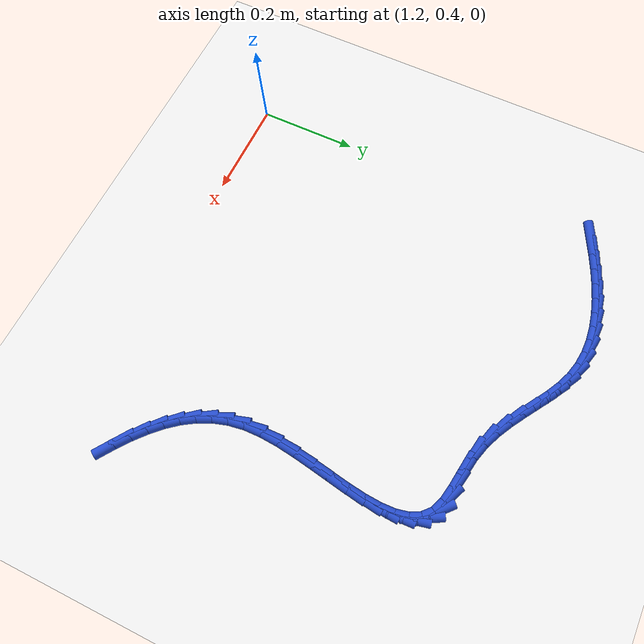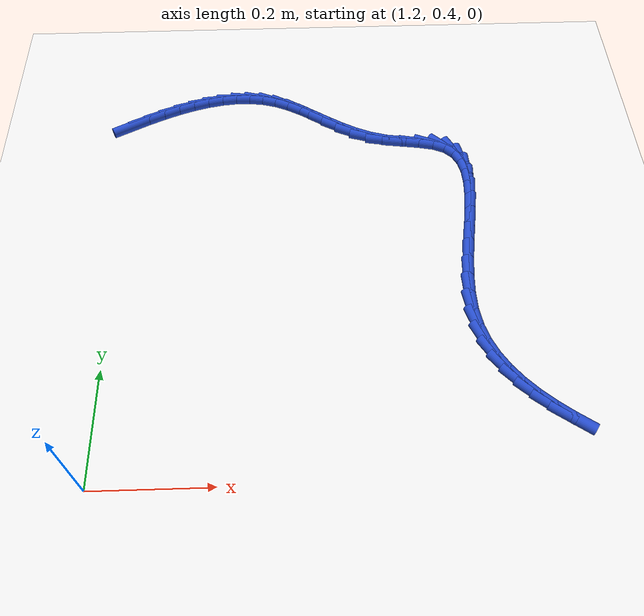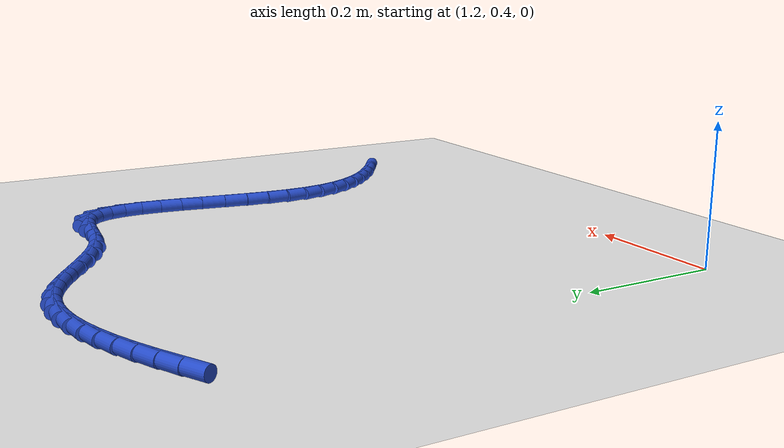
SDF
<sdf version="1.6">
 <world name="default">
  <model name="ground_plane">
   <static>1</static>
   <link name="link">
    <collision name="collision">
     <geometry><plane><normal>0 0 1</normal><size>100 100</size></plane></geometry>
     <surface><friction><ode><mu>100</mu><mu2>50</mu2></ode></friction></surface>
    </collision>
    <visual name="visual">
     <cast_shadows>0</cast_shadows>
     <geometry><plane><normal>0 0 1</normal><size>100 100</size></plane></geometry>
     <material>
      <script><uri>file://media/materials/scripts/gazebo.material</uri><name>Gazebo/WhiteGlow</name></script>
     </material>
    </visual>
   </link>
  </model>
  <model name="line">
   <link name="link_60">
    <pose>1.2008800733383287 1.1367130020543905 0.01 0 1.57 0.4735817645552316</pose>
    <collision name="collision">
     <geometry><cylinder><radius>0.01</radius><length>0.08</length></cylinder></geometry>
    </collision>
    <visual name="visual">
     <material>
      <script><name>Gazebo/Blue</name><uri>file://media/materials/scripts/gazebo.material</uri></script>
     </material>
     <geometry><cylinder><radius>0.01</radius><length>0.08</length></cylinder></geometry>
    </visual>
   </link>
   <link name="link_61">
    <pose>1.230659919717331 1.1519745805435508 0.01 0 1.57 0.43744638347184744</pose>
    <collision name="collision">
     <geometry><cylinder><radius>0.01</radius><length>0.08</length></cylinder></geometry>
    </collision>
    <visual name="visual">
     <material>
      <script><name>Gazebo/Blue</name><uri>file://media/materials/scripts/gazebo.material</uri></script>
     </material>
     <geometry><cylinder><radius>0.01</radius><length>0.08</length></cylinder></geometry>
    </visual>
   </link>
   <link name="link_62">
    <pose>1.2604717737219613 1.1659165317307187 0.01 0 1.57 0.3927620386258764</pose>
    <collision name="collision">
     <geometry><cylinder><radius>0.01</radius><length>0.08</length></cylinder></geometry>
    </collision>
    <visual name="visual">
     <material>
      <script><name>Gazebo/Blue</name><uri>file://media/materials/scripts/gazebo.material</uri></script>
     </material>
     <geometry><cylinder><radius>0.01</radius><length>0.08</length></cylinder></geometry>
    </visual>
   </link>
   <link name="link_63">
    <pose>1.2902205855803879 1.1782410873557414 0.01 0 1.57 0.33825873249876953</pose>
    <collision name="collision">
     <geometry><cylinder><radius>0.01</radius><length>0.08</length></cylinder></geometry>
    </collision>
    <visual name="visual">
     <material>
      <script><name>Gazebo/Blue</name><uri>file://media/materials/scripts/gazebo.material</uri></script>
     </material>
     <geometry><cylinder><radius>0.01</radius><length>0.08</length></cylinder></geometry>
    </visual>
   </link>
   <link name="link_64">
    <pose>1.319811305520779 1.188650479158465 0.01 0 1.57 0.2724377036952016</pose>
    <collision name="collision">
     <geometry><cylinder><radius>0.01</radius><length>0.08</length></cylinder></geometry>
    </collision>
    <visual name="visual">
     <material>
      <script><name>Gazebo/Blue</name><uri>file://media/materials/scripts/gazebo.material</uri></script>
     </material>
     <geometry><cylinder><radius>0.01</radius><length>0.08</length></cylinder></geometry>
    </visual>
   </link>
   <link name="link_65">
    <pose>1.3491488837713017 1.1968469388787353 0.01 0 1.57 0.19367400843832133</pose>
    <collision name="collision">
     <geometry><cylinder><radius>0.01</radius><length>0.08</length></cylinder></geometry>
    </collision>
    <visual name="visual">
     <material>
      <script><name>Gazebo/Blue</name><uri>file://media/materials/scripts/gazebo.material</uri></script>
     </material>
     <geometry><cylinder><radius>0.01</radius><length>0.08</length></cylinder></geometry>
    </visual>
   </link>
   <link name="link_66">
    <pose>1.3781382705601237 1.2025326982563982 0.01 0 1.57 0.10045509604018234</pose>
    <collision name="collision">
     <geometry><cylinder><radius>0.01</radius><length>0.08</length></cylinder></geometry>
    </collision>
    <visual name="visual">
     <material>
      <script><name>Gazebo/Blue</name><uri>file://media/materials/scripts/gazebo.material</uri></script>
     </material>
     <geometry><cylinder><radius>0.01</radius><length>0.08</length></cylinder></geometry>
    </visual>
   </link>
   <link name="link_67">
    <pose>1.406684416115413 1.2054099890313004 0.01 0 1.57 -0.008174170871005193</pose>
    <collision name="collision">
     <geometry><cylinder><radius>0.01</radius><length>0.08</length></cylinder></geometry>
    </collision>
    <visual name="visual">
     <material>
      <script><name>Gazebo/Blue</name><uri>file://media/materials/scripts/gazebo.material</uri></script>
     </material>
     <geometry><cylinder><radius>0.01</radius><length>0.08</length></cylinder></geometry>
    </visual>
   </link>
   <link name="link_68">
    <pose>1.4346922706653369 1.2051810429432874 0.01 0 1.57 -0.13194189041989873</pose>
    <collision name="collision">
     <geometry><cylinder><radius>0.01</radius><length>0.08</length></cylinder></geometry>
    </collision>
    <visual name="visual">
     <material>
      <script><name>Gazebo/Blue</name><uri>file://media/materials/scripts/gazebo.material</uri></script>
     </material>
     <geometry><cylinder><radius>0.01</radius><length>0.08</length></cylinder></geometry>
    </visual>
   </link>
   <link name="link_69">
    <pose>1.4620667844380637 1.2015480917322061 0.01 0 1.57 -0.2686118469271271</pose>
    <collision name="collision">
     <geometry><cylinder><radius>0.01</radius><length>0.08</length></cylinder></geometry>
    </collision>
    <visual name="visual">
     <material>
      <script><name>Gazebo/Blue</name><uri>file://media/materials/scripts/gazebo.material</uri></script>
     </material>
     <geometry><cylinder><radius>0.01</radius><length>0.08</length></cylinder></geometry>
    </visual>
   </link>
   <link name="link_70">
    <pose>1.488712907661761 1.1942133671379025 0.01 0 1.57 -0.40600251985540864</pose>
    <collision name="collision">
     <geometry><cylinder><radius>0.01</radius><length>0.08</length></cylinder></geometry>
    </collision>
    <visual name="visual">
     <material>
      <script><name>Gazebo/Blue</name><uri>file://media/materials/scripts/gazebo.material</uri></script>
     </material>
     <geometry><cylinder><radius>0.01</radius><length>0.08</length></cylinder></geometry>
    </visual>
   </link>
   <link name="link_71">
    <pose>1.5146070075155027 1.1830818353837358 0.01 0 1.57 -0.5061212952391865</pose>
    <collision name="collision">
     <geometry><cylinder><radius>0.01</radius><length>0.08</length></cylinder></geometry>
    </collision>
    <visual name="visual">
     <material>
      <script><name>Gazebo/Blue</name><uri>file://media/materials/scripts/gazebo.material</uri></script>
     </material>
     <geometry><cylinder><radius>0.01</radius><length>0.08</length></cylinder></geometry>
    </visual>
   </link>
   <link name="link_72">
    <pose>1.5400498776716243 1.1689794266478952 0.01 0 1.57 -0.5620100213830332</pose>
    <collision name="collision">
     <geometry><cylinder><radius>0.01</radius><length>0.08</length></cylinder></geometry>
    </collision>
    <visual name="visual">
     <material>
      <script><name>Gazebo/Blue</name><uri>file://media/materials/scripts/gazebo.material</uri></script>
     </material>
     <geometry><cylinder><radius>0.01</radius><length>0.08</length></cylinder></geometry>
    </visual>
   </link>
   <link name="link_73">
    <pose>1.5654343877233308 1.1529934511314472 0.01 0 1.57 -0.5781456885529181</pose>
    <collision name="collision">
     <geometry><cylinder><radius>0.01</radius><length>0.08</length></cylinder></geometry>
    </collision>
    <visual name="visual">
     <material>
      <script><name>Gazebo/Blue</name><uri>file://media/materials/scripts/gazebo.material</uri></script>
     </material>
     <geometry><cylinder><radius>0.01</radius><length>0.08</length></cylinder></geometry>
    </visual>
   </link>
   <link name="link_74">
    <pose>1.5911534134475127 1.136211236589358 0.01 0 1.57 -0.55756852805914</pose>
    <collision name="collision">
     <geometry><cylinder><radius>0.01</radius><length>0.08</length></cylinder></geometry>
    </collision>
    <visual name="visual">
     <material>
      <script><name>Gazebo/Blue</name><uri>file://media/materials/scripts/gazebo.material</uri></script>
     </material>
     <geometry><cylinder><radius>0.01</radius><length>0.08</length></cylinder></geometry>
    </visual>
   </link>
   <link name="link_75">
    <pose>1.6175998306210608 1.1197201107765953 0.01 0 1.57 -0.5014784152194947</pose>
    <collision name="collision">
     <geometry><cylinder><radius>0.01</radius><length>0.08</length></cylinder></geometry>
    </collision>
    <visual name="visual">
     <material>
      <script><name>Gazebo/Blue</name><uri>file://media/materials/scripts/gazebo.material</uri></script>
     </material>
     <geometry><cylinder><radius>0.01</radius><length>0.08</length></cylinder></geometry>
    </visual>
   </link>
   <link name="link_76">
    <pose>1.6451665150208648 1.1046074014481273 0.01 0 1.57 -0.4102303487607</pose>
    <collision name="collision">
     <geometry><cylinder><radius>0.01</radius><length>0.08</length></cylinder></geometry>
    </collision>
    <visual name="visual">
     <material>
      <script><name>Gazebo/Blue</name><uri>file://media/materials/scripts/gazebo.material</uri></script>
     </material>
     <geometry><cylinder><radius>0.01</radius><length>0.08</length></cylinder></geometry>
    </visual>
   </link>
   <link name="link_77">
    <pose>1.6742463424238159 1.091960436358921 0.01 0 1.57 -0.2856489374148688</pose>
    <collision name="collision">
     <geometry><cylinder><radius>0.01</radius><length>0.08</length></cylinder></geometry>
    </collision>
    <visual name="visual">
     <material>
      <script><name>Gazebo/Blue</name><uri>file://media/materials/scripts/gazebo.material</uri></script>
     </material>
     <geometry><cylinder><radius>0.01</radius><length>0.08</length></cylinder></geometry>
    </visual>
   </link>
   <link name="link_78">
    <pose>1.7052284845688546 1.0828615892110727 0.01 0 1.57 -0.16854654002653469</pose>
    <collision name="collision">
     <geometry><cylinder><radius>0.01</radius><length>0.08</length></cylinder></geometry>
    </collision>
    <visual name="visual">
     <material>
      <script><name>Gazebo/Blue</name><uri>file://media/materials/scripts/gazebo.material</uri></script>
     </material>
     <geometry><cylinder><radius>0.01</radius><length>0.08</length></cylinder></geometry>
    </visual>
   </link>
   <link name="link_79">
    <pose>1.7377104655341917 1.0773344258810922 0.01 0 1.57 -0.13431611152897188</pose>
    <collision name="collision">
     <geometry><cylinder><radius>0.01</radius><length>0.08</length></cylinder></geometry>
    </collision>
    <visual name="visual">
     <material>
      <script><name>Gazebo/Blue</name><uri>file://media/materials/scripts/gazebo.material</uri></script>
     </material>
     <geometry><cylinder><radius>0.01</radius><length>0.08</length></cylinder></geometry>
    </visual>
   </link>
   <link name="link_80">
    <pose>1.7695203896848555 1.0730359601390402 0.01 0 1.57 -0.19700739526920596</pose>
    <collision name="collision">
     <geometry><cylinder><radius>0.01</radius><length>0.08</length></cylinder></geometry>
    </collision>
    <visual name="visual">
     <material>
      <script><name>Gazebo/Blue</name><uri>file://media/materials/scripts/gazebo.material</uri></script>
     </material>
     <geometry><cylinder><radius>0.01</radius><length>0.08</length></cylinder></geometry>
    </visual>
   </link>
   <link name="link_81">
    <pose>1.7982464584684994 1.0673023419428382 0.01 0 1.57 -0.399677282429138</pose>
    <collision name="collision">
     <geometry><cylinder><radius>0.01</radius><length>0.08</length></cylinder></geometry>
    </collision>
    <visual name="visual">
     <material>
      <script><name>Gazebo/Blue</name><uri>file://media/materials/scripts/gazebo.material</uri></script>
     </material>
     <geometry><cylinder><radius>0.01</radius><length>0.08</length></cylinder></geometry>
    </visual>
   </link>
   <link name="link_82">
    <pose>1.8214907330309549 1.0574836613077576 0.01 0 1.57 -0.7508494806357472</pose>
    <collision name="collision">
     <geometry><cylinder><radius>0.01</radius><length>0.08</length></cylinder></geometry>
    </collision>
    <visual name="visual">
     <material>
      <script><name>Gazebo/Blue</name><uri>file://media/materials/scripts/gazebo.material</uri></script>
     </material>
     <geometry><cylinder><radius>0.01</radius><length>0.08</length></cylinder></geometry>
    </visual>
   </link>
   <link name="link_83">
    <pose>1.8379979883188915 1.042079347557758 0.01 0 1.57 -1.0977352028854512</pose>
    <collision name="collision">
     <geometry><cylinder><radius>0.01</radius><length>0.08</length></cylinder></geometry>
    </collision>
    <visual name="visual">
     <material>
      <script><name>Gazebo/Blue</name><uri>file://media/materials/scripts/gazebo.material</uri></script>
     </material>
     <geometry><cylinder><radius>0.01</radius><length>0.08</length></cylinder></geometry>
    </visual>
   </link>
   <link name="link_84">
    <pose>1.8484909300922305 1.0215782289650457 0.01 0 1.57 -1.3573986489377012</pose>
    <collision name="collision">
     <geometry><cylinder><radius>0.01</radius><length>0.08</length></cylinder></geometry>
    </collision>
    <visual name="visual">
     <material>
      <script><name>Gazebo/Blue</name><uri>file://media/materials/scripts/gazebo.material</uri></script>
     </material>
     <geometry><cylinder><radius>0.01</radius><length>0.08</length></cylinder></geometry>
    </visual>
   </link>
   <link name="link_85">
    <pose>1.8538890969347097 0.996667107871523 0.01 0 1.57 -1.5281137101164577</pose>
    <collision name="collision">
     <geometry><cylinder><radius>0.01</radius><length>0.08</length></cylinder></geometry>
    </collision>
    <visual name="visual">
     <material>
      <script><name>Gazebo/Blue</name><uri>file://media/materials/scripts/gazebo.material</uri></script>
     </material>
     <geometry><cylinder><radius>0.01</radius><length>0.08</length></cylinder></geometry>
    </visual>
   </link>
   <link name="link_86">
    <pose>1.8551120274300636 0.9680327866190906 0.01 0 1.57 1.5066998116914727</pose>
    <collision name="collision">
     <geometry><cylinder><radius>0.01</radius><length>0.08</length></cylinder></geometry>
    </collision>
    <visual name="visual">
     <material>
      <script><name>Gazebo/Blue</name><uri>file://media/materials/scripts/gazebo.material</uri></script>
     </material>
     <geometry><cylinder><radius>0.01</radius><length>0.08</length></cylinder></geometry>
    </visual>
   </link>
   <link name="link_87">
    <pose>1.8530792601620298 0.936362067549651 0.01 0 1.57 1.4430742883095142</pose>
    <collision name="collision">
     <geometry><cylinder><radius>0.01</radius><length>0.08</length></cylinder></geometry>
    </collision>
    <visual name="visual">
     <material>
      <script><name>Gazebo/Blue</name><uri>file://media/materials/scripts/gazebo.material</uri></script>
     </material>
     <geometry><cylinder><radius>0.01</radius><length>0.08</length></cylinder></geometry>
    </visual>
   </link>
   <link name="link_88">
    <pose>1.8487103337143436 0.902341753005106 0.01 0 1.57 1.4100582398535333</pose>
    <collision name="collision">
     <geometry><cylinder><radius>0.01</radius><length>0.08</length></cylinder></geometry>
    </collision>
    <visual name="visual">
     <material>
      <script><name>Gazebo/Blue</name><uri>file://media/materials/scripts/gazebo.material</uri></script>
     </material>
     <geometry><cylinder><radius>0.01</radius><length>0.08</length></cylinder></geometry>
    </visual>
   </link>
   <link name="link_89">
    <pose>1.8429247866707406 0.8666586453273561 0.01 0 1.57 1.401065429838195</pose>
    <collision name="collision">
     <geometry><cylinder><radius>0.01</radius><length>0.08</length></cylinder></geometry>
    </collision>
    <visual name="visual">
     <material>
      <script><name>Gazebo/Blue</name><uri>file://media/materials/scripts/gazebo.material</uri></script>
     </material>
     <geometry><cylinder><radius>0.01</radius><length>0.08</length></cylinder></geometry>
    </visual>
   </link>
   <link name="link_90">
    <pose>1.8366421576149574 0.829999546858304 0.01 0 1.57 1.4135018181118597</pose>
    <collision name="collision">
     <geometry><cylinder><radius>0.01</radius><length>0.08</length></cylinder></geometry>
    </collision>
    <visual name="visual">
     <material>
      <script><name>Gazebo/Blue</name><uri>file://media/materials/scripts/gazebo.material</uri></script>
     </material>
     <geometry><cylinder><radius>0.01</radius><length>0.08</length></cylinder></geometry>
    </visual>
   </link>
   <link name="link_91">
    <pose>1.8307819851307303 0.7930512599398511 0.01 0 1.57 1.4478061755793217</pose>
    <collision name="collision">
     <geometry><cylinder><radius>0.01</radius><length>0.08</length></cylinder></geometry>
    </collision>
    <visual name="visual">
     <material>
      <script><name>Gazebo/Blue</name><uri>file://media/materials/scripts/gazebo.material</uri></script>
     </material>
     <geometry><cylinder><radius>0.01</radius><length>0.08</length></cylinder></geometry>
    </visual>
   </link>
   <link name="link_92">
    <pose>1.8262638078017952 0.7565005869138993 0.01 0 1.57 1.507254080678876</pose>
    <collision name="collision">
     <geometry><cylinder><radius>0.01</radius><length>0.08</length></cylinder></geometry>
    </collision>
    <visual name="visual">
     <material>
      <script><name>Gazebo/Blue</name><uri>file://media/materials/scripts/gazebo.material</uri></script>
     </material>
     <geometry><cylinder><radius>0.01</radius><length>0.08</length></cylinder></geometry>
    </visual>
   </link>
   <link name="link_93">
    <pose>1.8240071642118887 0.7210343301223502 0.01 0 1.57 -1.543368048002458</pose>
    <collision name="collision">
     <geometry><cylinder><radius>0.01</radius><length>0.08</length></cylinder></geometry>
    </collision>
    <visual name="visual">
     <material>
      <script><name>Gazebo/Blue</name><uri>file://media/materials/scripts/gazebo.material</uri></script>
     </material>
     <geometry><cylinder><radius>0.01</radius><length>0.08</length></cylinder></geometry>
    </visual>
   </link>
   <link name="link_94">
    <pose>1.8249315929447463 0.6873392919071054 0.01 0 1.57 -1.4166838713793697</pose>
    <collision name="collision">
     <geometry><cylinder><radius>0.01</radius><length>0.08</length></cylinder></geometry>
    </collision>
    <visual name="visual">
     <material>
      <script><name>Gazebo/Blue</name><uri>file://media/materials/scripts/gazebo.material</uri></script>
     </material>
     <geometry><cylinder><radius>0.01</radius><length>0.08</length></cylinder></geometry>
    </visual>
   </link>
   <link name="link_95">
    <pose>1.8298015882673588 0.6559895937872796 0.01 0 1.57 -1.2775870808216063</pose>
    <collision name="collision">
     <geometry><cylinder><radius>0.01</radius><length>0.08</length></cylinder></geometry>
    </collision>
    <visual name="visual">
     <material>
      <script><name>Gazebo/Blue</name><uri>file://media/materials/scripts/gazebo.material</uri></script>
     </material>
     <geometry><cylinder><radius>0.01</radius><length>0.08</length></cylinder></geometry>
    </visual>
   </link>
   <link name="link_96">
    <pose>1.8385643287218343 0.6269653606087155 0.01 0 1.57 -1.1410682008197186</pose>
    <collision name="collision">
     <geometry><cylinder><radius>0.01</radius><length>0.08</length></cylinder></geometry>
    </collision>
    <visual name="visual">
     <material>
      <script><name>Gazebo/Blue</name><uri>file://media/materials/scripts/gazebo.material</uri></script>
     </material>
     <geometry><cylinder><radius>0.01</radius><length>0.08</length></cylinder></geometry>
    </visual>
   </link>
   <link name="link_97">
    <pose>1.850898647412959 0.6000516930763957 0.01 0 1.57 -1.0136859014835315</pose>
    <collision name="collision">
     <geometry><cylinder><radius>0.01</radius><length>0.08</length></cylinder></geometry>
    </collision>
    <visual name="visual">
     <material>
      <script><name>Gazebo/Blue</name><uri>file://media/materials/scripts/gazebo.material</uri></script>
     </material>
     <geometry><cylinder><radius>0.01</radius><length>0.08</length></cylinder></geometry>
    </visual>
   </link>
   <link name="link_98">
    <pose>1.8664832186826144 0.5750335765119388 0.01 0 1.57 -0.900159494776728</pose>
    <collision name="collision">
     <geometry><cylinder><radius>0.01</radius><length>0.08</length></cylinder></geometry>
    </collision>
    <visual name="visual">
     <material>
      <script><name>Gazebo/Blue</name><uri>file://media/materials/scripts/gazebo.material</uri></script>
     </material>
     <geometry><cylinder><radius>0.01</radius><length>0.08</length></cylinder></geometry>
    </visual>
   </link>
   <link name="link_99">
    <pose>1.88499671687268 0.5516959962369625 0.01 0 1.57 -0.8028633343058532</pose>
    <collision name="collision">
     <geometry><cylinder><radius>0.01</radius><length>0.08</length></cylinder></geometry>
    </collision>
    <visual name="visual">
     <material>
      <script><name>Gazebo/Blue</name><uri>file://media/materials/scripts/gazebo.material</uri></script>
     </material>
     <geometry><cylinder><radius>0.01</radius><length>0.08</length></cylinder></geometry>
    </visual>
   </link>
   <link name="link_100">
    <pose>1.906117816325034 0.5298239375730848 0.01 0 1.57 -0.7222098272818781</pose>
    <collision name="collision">
     <geometry><cylinder><radius>0.01</radius><length>0.08</length></cylinder></geometry>
    </collision>
    <visual name="visual">
     <material>
      <script><name>Gazebo/Blue</name><uri>file://media/materials/scripts/gazebo.material</uri></script>
     </material>
     <geometry><cylinder><radius>0.01</radius><length>0.08</length></cylinder></geometry>
    </visual>
   </link>
   <link name="link_101">
    <pose>1.9295251913815596 0.5092023858419239 0.01 0 1.57 -0.6573991090458607</pose>
    <collision name="collision">
     <geometry><cylinder><radius>0.01</radius><length>0.08</length></cylinder></geometry>
    </collision>
    <visual name="visual">
     <material>
      <script><name>Gazebo/Blue</name><uri>file://media/materials/scripts/gazebo.material</uri></script>
     </material>
     <geometry><cylinder><radius>0.01</radius><length>0.08</length></cylinder></geometry>
    </visual>
   </link>
   <link name="link_102">
    <pose>1.9548975163841358 0.48961632636509783 0.01 0 1.57 -0.6071001802593188</pose>
    <collision name="collision">
     <geometry><cylinder><radius>0.01</radius><length>0.08</length></cylinder></geometry>
    </collision>
    <visual name="visual">
     <material>
      <script><name>Gazebo/Blue</name><uri>file://media/materials/scripts/gazebo.material</uri></script>
     </material>
     <geometry><cylinder><radius>0.01</radius><length>0.08</length></cylinder></geometry>
    </visual>
   </link>
  </model>
 </world>
</sdf>
